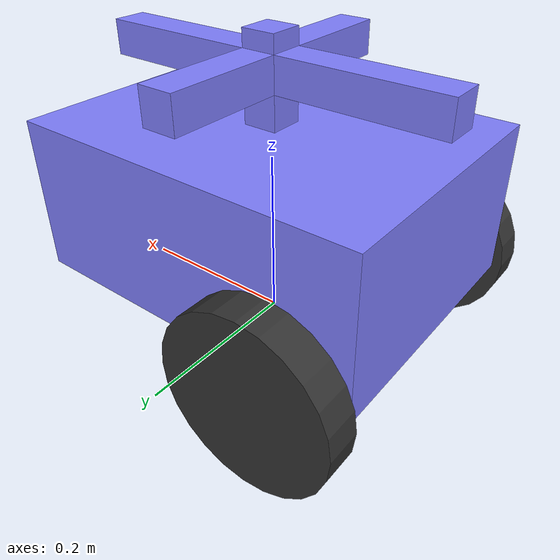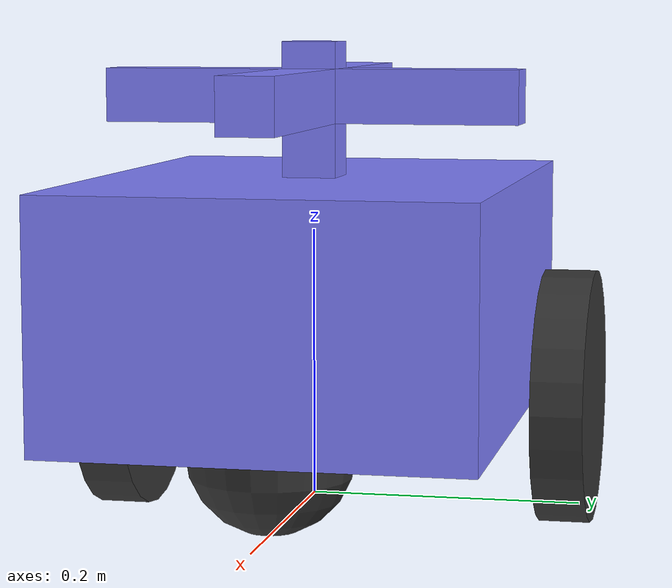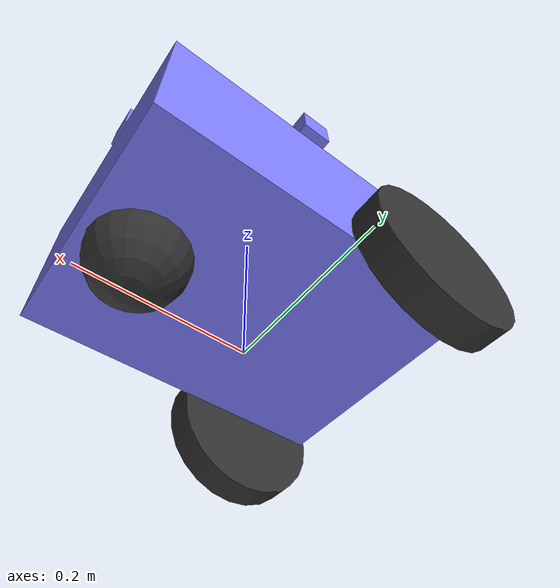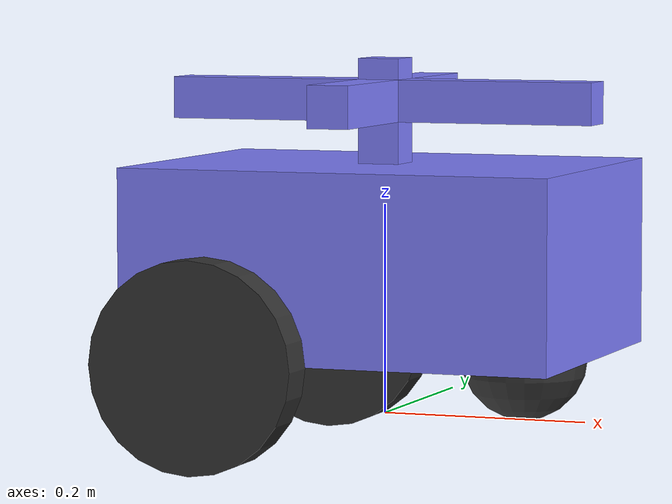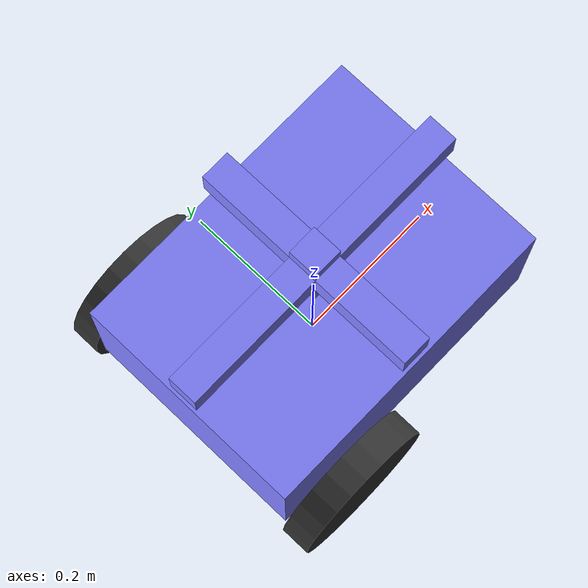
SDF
<?xml version="1.0" ?>
<sdf version="1.8">
    <model name='diff_drive'>
      <link name='base'>
        <pose>0.0 0.0 0.15000000000000002 0 -0 0</pose>
        <inertial>
          <mass>1.14395</mass>
          <inertia>
            <ixx>0.26164</ixx>
            <ixy>0</ixy>
            <ixz>0</ixz>
            <iyy>0.3416519</iyy>
            <iyz>0</iyz>
            <izz>0.161014</izz>
          </inertia>
        </inertial>
        <visual name='visual_base'>
          <geometry>
            <box>
              <size>0.42 0.31 0.18</size>
            </box>
          </geometry>
          <material>
            <ambient>0.5 0.5 1.0 1</ambient>
            <diffuse>0.5 0.5 1.0 1</diffuse>
            <specular>0.0 0.0 1.0 1</specular>
          </material>
        </visual>
        <collision name='collision_base'>
          <geometry>
            <box>
              <size>0.42 0.31 0.18</size>
            </box>
          </geometry>
        </collision>
      </link>

      <link name='drivewhl_l'>
        <pose>-0.12 0.18 0.06 1.5707 0 0</pose>
        <inertial>
          <mass>0.5</mass>
          <inertia>
            <ixx>0.00145833</ixx>
            <ixy>0</ixy>
            <ixz>0</ixz>
            <iyy>0.00145833</iyy>
            <iyz>0</iyz>
            <izz>0.0025</izz>
          </inertia>
        </inertial>
        <visual name='visual_drivewhl_l'>
          <geometry>
            <cylinder>
              <radius>0.1</radius>
              <length>0.04</length>
            </cylinder>
          </geometry>
          <material>
            <ambient>0.2 0.2 0.2 1</ambient>
            <diffuse>0.2 0.2 0.2 1</diffuse>
            <specular>0.2 0.2 0.2 1</specular>
          </material>
        </visual>
        <collision name='collision_drivewhl_l'>
          <geometry>
            <cylinder>
              <radius>0.1</radius>
              <length>0.04</length>
            </cylinder>
          </geometry>
        </collision>
      </link>

      <link name='drivewhl_r'>
        <pose>-0.12 -0.18 0.06 1.5707 0 0</pose>
        <inertial>
          <mass>2</mass>
          <inertia>
            <ixx>0.00145833</ixx>
            <ixy>0</ixy>
            <ixz>0</ixz>
            <iyy>0.00145833</iyy>
            <iyz>0</iyz>
            <izz>0.0025</izz>
          </inertia>
        </inertial>
        <visual name='visual_drivewhl_r'>
          <geometry>
            <cylinder>
              <radius>0.1</radius>
              <length>0.04</length>
            </cylinder>
          </geometry>
          <material>
            <ambient>0.2 0.2 0.2 1</ambient>
            <diffuse>0.2 0.2 0.2 1</diffuse>
            <specular>0.2 0.2 0.2 1</specular>
          </material>
        </visual>
        <collision name='collision_drivewhl_r'>
          <geometry>
            <cylinder>
              <radius>0.1</radius>
              <length>0.04</length>
            </cylinder>
          </geometry>
        </collision>
      </link>

      <link name='caster'>
        <pose>0.14 0.0 0.06 0 -0 0</pose>
        <inertial>
          <mass>0.5</mass>
          <inertia>
            <ixx>0.1</ixx>
            <ixy>0</ixy>
            <ixz>0</ixz>
            <iyy>0.1</iyy>
            <iyz>0</iyz>
            <izz>0.1</izz>
          </inertia>
        </inertial>
        <visual name='visual_caster'>
          <geometry>
            <sphere>
              <radius>0.06</radius>
            </sphere>
          </geometry>
          <material>
            <ambient>0.2 0.2 0.2 1</ambient>
            <diffuse>0.2 0.2 0.2 1</diffuse>
            <specular>0.2 0.2 0.2 1</specular>
          </material>
        </visual>
        <collision name='collision_caster'>
          <geometry>
            <sphere>
              <radius>0.06</radius>
            </sphere>
          </geometry>
        </collision>
      </link>

      <joint name='drivewhl_l_joint' type='revolute'>
        <parent>base</parent>
        <child>drivewhl_l</child>
        <axis>
          <xyz>0 0 1</xyz>
          <limit>
            <lower>-1.79769e+308</lower>
            <upper>1.79769e+308</upper>
          </limit>
        </axis>
      </joint>

      <joint name='drivewhl_r_joint' type='revolute'>
        <parent>base</parent>
        <child>drivewhl_r</child>
        <axis>
          <xyz>0 0 1</xyz>
          <limit>
            <lower>-1.79769e+308</lower>
            <upper>1.79769e+308</upper>
          </limit>
        </axis>
      </joint>

      <joint name='caster_wheel' type='ball'>
        <parent>base</parent>
        <child>caster</child>
      </joint>

      <link name="rod">
        <pose>0.0 0.0 0.29 0 -0 0</pose>
        <inertial>
          <mass>0.1</mass>
          <inertia>
            <ixx>0.26164</ixx>
            <ixy>0</ixy>
            <ixz>0</ixz>
            <iyy>0.3416519</iyy>
            <iyz>0</iyz>
            <izz>0.161014</izz>
          </inertia>
        </inertial>
        <visual name='visual_rod'>
          <geometry>
            <box>
              <size>0.04 0.04 0.1</size>
            </box>
          </geometry>
          <material>
            <ambient>0.5 0.5 1.0 1</ambient>
            <diffuse>0.5 0.5 1.0 1</diffuse>
            <specular>0.0 0.0 1.0 1</specular>
          </material>
        </visual>
        <collision name='collision_rod'>
          <geometry>
            <box>
              <size>0.04 0.04 0.1</size>
            </box>
          </geometry>
        </collision>
      </link>

      <joint name="rod_joint" type="fixed">
        <parent>base</parent>
        <child>rod</child>
      </joint>

      <link name="hor_thing">
        <pose>0.0 0.0 0.3 0 -0 0</pose>
        <inertial>
          <mass>0.1</mass>
          <inertia>
            <ixx>0.26164</ixx>
            <ixy>0</ixy>
            <ixz>0</ixz>
            <iyy>0.3416519</iyy>
            <iyz>0</iyz>
            <izz>0.161014</izz>
          </inertia>
        </inertial>
        <visual name='visual_hor_thing'>
          <geometry>
            <box>
              <size>0.04 0.31 0.04</size>
            </box>
          </geometry>
          <material>
            <ambient>0.5 0.5 1.0 1</ambient>
            <diffuse>0.5 0.5 1.0 1</diffuse>
            <specular>0.0 0.0 1.0 1</specular>
          </material>
        </visual>
        <collision name='collision_hor_thing'>
          <geometry>
            <box>
              <size>0.04 0.31 0.04</size>
            </box>
          </geometry>
        </collision>
      </link>

      <joint name="hor_thing_joint" type="fixed">
        <parent>rod</parent>
        <child>hor_thing</child>
      </joint>

      <link name="ver_thing">
        <pose>0.0 0.0 0.3 0 -0 0</pose>
        <inertial>
          <mass>0.1</mass>
          <inertia>
            <ixx>0.26164</ixx>
            <ixy>0</ixy>
            <ixz>0</ixz>
            <iyy>0.3416519</iyy>
            <iyz>0</iyz>
            <izz>0.161014</izz>
          </inertia>
        </inertial>
        <visual name='visual_ver_thing'>
          <geometry>
            <box>
              <size>0.42 0.04 0.04</size>
            </box>
          </geometry>
          <material>
            <ambient>0.5 0.5 1.0 1</ambient>
            <diffuse>0.5 0.5 1.0 1</diffuse>
            <specular>0.0 0.0 1.0 1</specular>
          </material>
        </visual>
        <collision name='collision_ver_thing'>
          <geometry>
            <box>
              <size>0.42 0.04 0.04</size>
            </box>
          </geometry>
        </collision>
      </link>

      <joint name="ver_thing_joint" type="fixed">
        <parent>rod</parent>
        <child>ver_thing</child>
      </joint>

      <plugin
        filename="ignition-gazebo-diff-drive-system"
        name="ignition::gazebo::systems::DiffDrive">
        <left_joint>drivewhl_l_joint</left_joint>
        <right_joint>drivewhl_r_joint</right_joint>
        <wheel_separation>0.36</wheel_separation>
        <wheel_radius>0.1</wheel_radius>
        <odom_publish_frequency>1</odom_publish_frequency>
        <max_linear_acceleration>1000</max_linear_acceleration>
        <min_linear_acceleration>-1000</min_linear_acceleration>
        <max_angular_acceleration>2</max_angular_acceleration>
        <min_angular_acceleration>-2</min_angular_acceleration>
        <max_linear_velocity>1000</max_linear_velocity>
        <min_linear_velocity>-1000</min_linear_velocity>
        <max_angular_velocity>1000</max_angular_velocity>
        <min_angular_velocity>-1000</min_angular_velocity>
      </plugin>
    </model>
</sdf>
